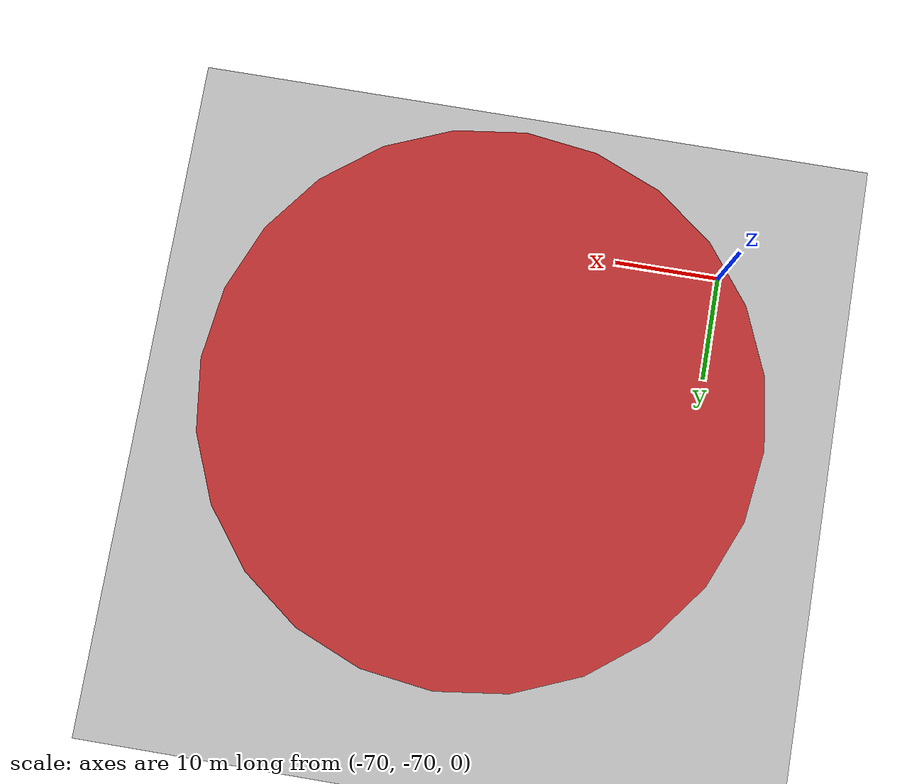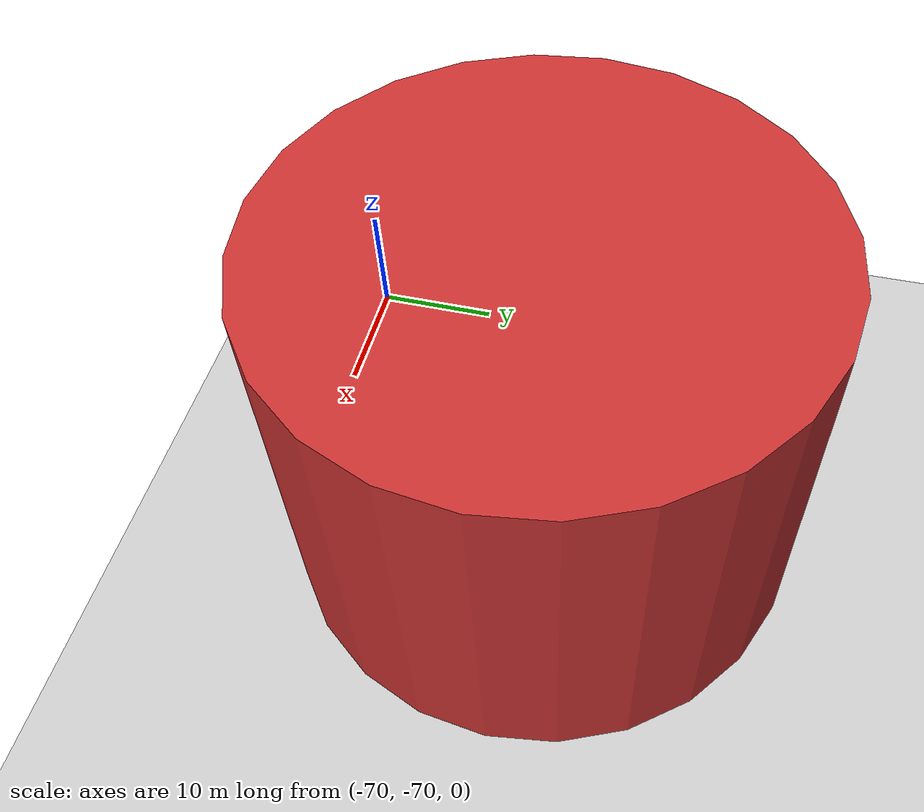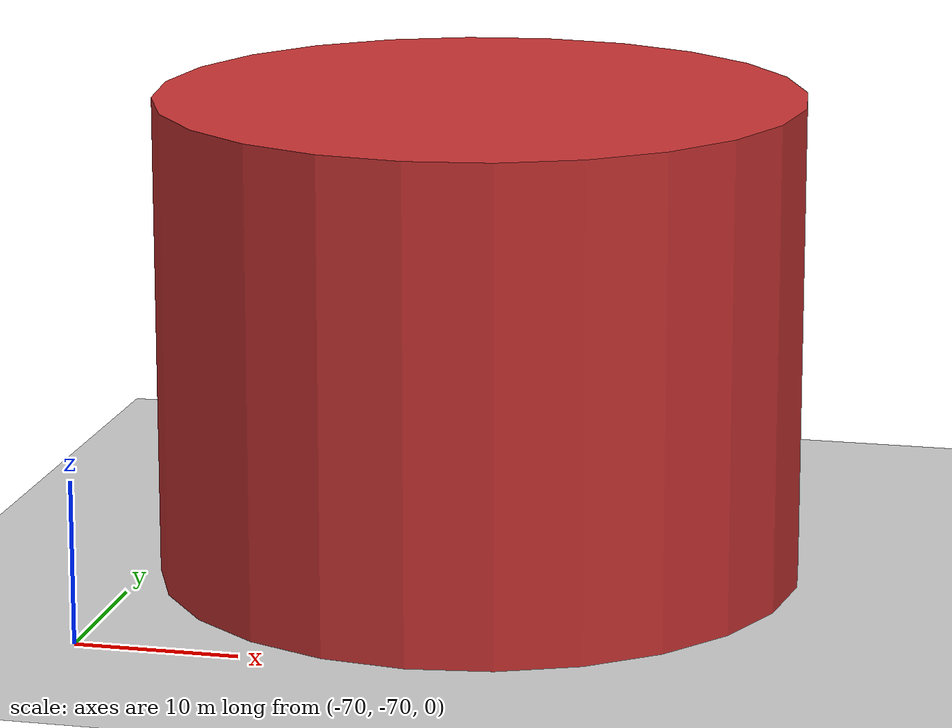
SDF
<?xml version="1.0" ?>
<sdf version="1.6">
  <world name="default">
    <gui>
      <camera name="user_camera">
        <pose>-5 0 1 0 0.2 0</pose>
      </camera>
    </gui>
    <scene>
      <grid>0</grid>
      <origin_visual>0</origin_visual>
      <ambient>0.592 0.624 0.635 1</ambient>
      <sky>
        <clouds>
          <speed>12</speed>
        </clouds>
      </sky>
      <background>0.35 0.35 0.35 1</background>
      <shadows>false</shadows>
    </scene>
    <physics name='default_physics' default='0' type='ode'>
      <gravity>0 0 -9.8066</gravity>
      <ode>
        <solver>
          <type>quick</type>
          <iters>10</iters>
          <sor>1.3</sor>
          <use_dynamic_moi_rescaling>0</use_dynamic_moi_rescaling>
        </solver>
        <constraints>
          <cfm>0</cfm>
          <erp>0.2</erp>
          <contact_max_correcting_vel>100</contact_max_correcting_vel>
          <contact_surface_layer>0.001</contact_surface_layer>
        </constraints>
      </ode>
      <max_step_size>0.002</max_step_size>
      <real_time_factor>1</real_time_factor>
      <real_time_update_rate>500</real_time_update_rate>
      <magnetic_field>6.0e-6 2.3e-5 -4.2e-5</magnetic_field>
    </physics>
    <gravity>0 0 -9.8</gravity>
    <include>
      <uri>model://sun</uri>
    </include>

    <model name="ground_plane">
      <static>true</static>
      <link name="link">
        <collision name="collision">
          <geometry>
            <plane>
              <normal>0 0 1</normal>
              <size>5000 5000</size>
            </plane>
          </geometry>

          <friction>
            <ode>
              <mu>100</mu>
              <mu2>50</mu2>
            </ode>
          </friction>

        </collision>

        <!-- ========== 跑道 ========== -->
        <visual name="runway">
          <pose>0 0 0.0 0 0 0</pose>
          <cast_shadows>false</cast_shadows>
          <geometry>
            <plane>
              <normal>0 0 1</normal>
              <size>401.25 32.05</size>
            </plane>
          </geometry>
          <material>
            <script>
              <uri>file://media/materials/scripts/gazebo.material</uri>
              <name>Gazebo/Runway</name>
            </script>
          </material>
        </visual>

        <!-- ========== 加深一点的灰色地面 ========== -->
        <visual name="grass">
          <pose>0 0 -0.5 0 0 0</pose>
          <cast_shadows>false</cast_shadows>
          <geometry>
            <plane>
              <normal>0 0 1</normal>
              <size>6000 3000</size>
            </plane>
          </geometry>
          <material>
            <ambient>0.28 0.18 0.08 1</ambient>
            <diffuse>0.32 0.22 0.10 1</diffuse>
            <specular>0.1 0.1 0.1 1</specular>
          </material>
        </visual>

      </link>
    </model>

    <!-- ========== 添加圆柱障碍物 ========== -->
    <model name="cylinder_obstacle">
      <static>true</static>
      <pose>-50 -50 15 0 0 0</pose>  <!-- 底部 z=0，中心高 15m -->
      <link name="cylinder_link">
        <collision name="collision">
          <geometry>
            <cylinder>
              <radius>20</radius>
              <length>30</length>
            </cylinder>
          </geometry>
        </collision>
        <visual name="visual">
          <geometry>
            <cylinder>
              <radius>20</radius>
              <length>30</length>
            </cylinder>
          </geometry>
          <material>
            <ambient>0.8 0.2 0.2 1</ambient>
            <diffuse>0.8 0.2 0.2 1</diffuse>
            <specular>0.5 0.5 0.5 1</specular>
          </material>
        </visual>
      </link>
    </model>

  </world>
</sdf>
